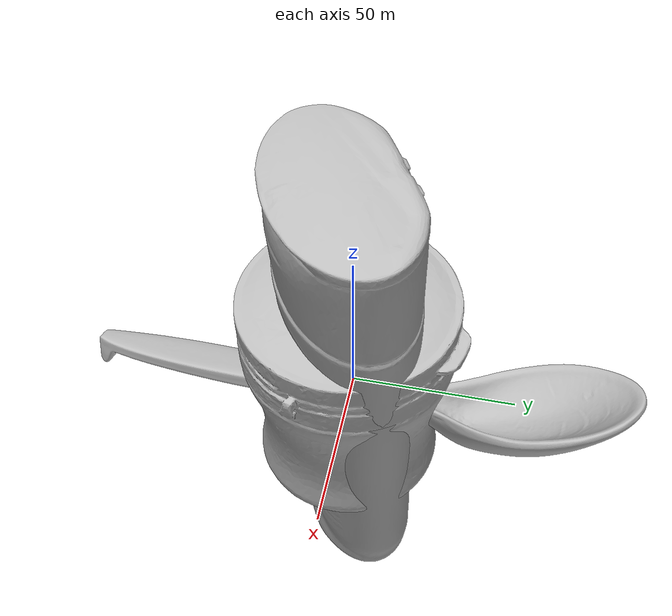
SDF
<sdf version="1.4">
 <world name="default">
  <light name="light1" type="point">
   <pose>0 0 1 0 0 0</pose>
   <diffuse>3 3 3 1</diffuse>
   <specular>3 3 3 1</specular>
  </light>
  <light name="light2" type="point">
   <pose>0 0.5 2 0 0 0</pose>
   <diffuse>1 1 1 1</diffuse>
   <specular>1 1 1 1</specular>
  </light>
  <light name="light3" type="point">
   <pose>0 0.5 2 0 0 0</pose>
   <diffuse>3 3 3 1</diffuse>
   <specular>3 3 3 1</specular>
  </light>
  <scene><ambient>0.7 0.7 0.7</ambient></scene>
  <model name="bottle1">
   <link name="link_bottle1">
    <collision name="default">
     <geometry>
      <mesh><uri>model://green_arrow/collision_meshes/collision.obj</uri><scale>1.0 1.0 1.0</scale></mesh>
     </geometry>
     <surface>
      <friction><ode><mu>0.5</mu><mu2>0.5</mu2></ode></friction>
      <contact><ode><max_vel>0</max_vel><min_depth>0.0001</min_depth><kp>1e8</kp></ode></contact>
     </surface>
    </collision>
    <visual name="default">
     <geometry>
      <mesh><uri>model://green_arrow/visual_meshes/visual.dae</uri><scale>1.0 1.0 1.0</scale></mesh>
     </geometry>
    </visual>
    <inertial>
     <mass>0.159866601228714</mass>
     <pose>0.0005358478520065546 -0.0008270691614598036 0.0022109695710241795 -0.0633227561078847 0.012984243694000861 0.6740794776591725</pose>
     <inertia>
      <ixx>0.00011596808</ixx>
      <iyy>0.00011579238</iyy>
      <izz>7.488036e-05</izz>
      <ixy>0</ixy>
      <ixz>0</ixz>
      <iyz>0</iyz>
     </inertia>
    </inertial>
   </link>
   <pose>0.025447214022278786 -0.3685067892074585 0.03896165266633034 0.04528455109567219 0.02425635071282073 -0.9602987212565485</pose>
  </model>
  <model name="bottle2">
   <link name="link_bottle2">
    <collision name="default">
     <geometry>
      <mesh><uri>model://conditioner/collision_meshes/collision.obj</uri><scale>1.0 1.0 1.0</scale></mesh>
     </geometry>
     <surface>
      <friction><ode><mu>0.5</mu><mu2>0.5</mu2></ode></friction>
      <contact><ode><max_vel>0</max_vel><min_depth>0.0001</min_depth><kp>1e8</kp></ode></contact>
     </surface>
    </collision>
    <visual name="default">
     <geometry>
      <mesh><uri>model://conditioner/visual_meshes/visual.dae</uri><scale>1.0 1.0 1.0</scale></mesh>
     </geometry>
    </visual>
    <inertial>
     <mass>0.1887805312871933</mass>
     <pose>-0.00055994390277192 -0.00017297487647738308 0.004359682556241751 -0.005038374268360293 0.015306043554332214 0.015072361860715313</pose>
     <inertia>
      <ixx>0.00041066532</ixx>
      <iyy>0.00043991112</iyy>
      <izz>6.3318876e-05</izz>
      <ixy>0</ixy>
      <ixz>0</ixz>
      <iyz>0</iyz>
     </inertia>
    </inertial>
   </link>
   <pose>0.26925647258758545 -0.19803021848201752 0.08122970908880234 0.03689241142622348 -0.01566010302511704 0.48758299609314953</pose>
  </model>
  <model name="silverware1">
   <link name="link_silverware1">
    <collision name="default">
     <geometry>
      <mesh><uri>model://doraemon_spoon/collision_meshes/collision.obj</uri><scale>1.0 1.0 1.0</scale></mesh>
     </geometry>
     <surface>
      <friction><ode><mu>0.5</mu><mu2>0.5</mu2></ode></friction>
      <contact><ode><max_vel>0</max_vel><min_depth>0.0001</min_depth><kp>1e8</kp></ode></contact>
     </surface>
    </collision>
    <visual name="default">
     <geometry>
      <mesh><uri>model://doraemon_spoon/visual_meshes/visual.dae</uri><scale>1.0 1.0 1.0</scale></mesh>
     </geometry>
    </visual>
    <inertial>
     <mass>0.029215902090072632</mass>
     <pose>-0.022165078669786453 -0.0006374581134878099 -0.003332544816657901 -0.009147069561506448 0.07380416816022378 -0.014123831282405222</pose>
     <inertia>
      <ixx>2.2884674e-06</ixx>
      <iyy>6.499588e-05</iyy>
      <izz>6.610089e-05</izz>
      <ixy>0</ixy>
      <ixz>0</ixz>
      <iyz>0</iyz>
     </inertia>
    </inertial>
   </link>
   <pose>-0.08390338718891144 0.2713562250137329 0.01473932433873415 0.2790311231227967 -0.010336580354636797 -1.6245411815085786</pose>
  </model>
  <model name="stationery1">
   <link name="link_stationery1">
    <collision name="default">
     <geometry>
      <mesh><uri>model://correction_fuid/collision_meshes/collision.obj</uri><scale>1.0 1.0 1.0</scale></mesh>
     </geometry>
     <surface>
      <friction><ode><mu>0.5</mu><mu2>0.5</mu2></ode></friction>
      <contact><ode><max_vel>0</max_vel><min_depth>0.0001</min_depth><kp>1e8</kp></ode></contact>
     </surface>
    </collision>
    <visual name="default">
     <geometry>
      <mesh><uri>model://correction_fuid/visual_meshes/visual.dae</uri><scale>1.0 1.0 1.0</scale></mesh>
     </geometry>
    </visual>
    <inertial>
     <mass>0.02664039097726345</mass>
     <pose>-0.00012557733862195164 -0.0009722907561808825 -0.001618212671019137 -0.010846611490809042 0.019488348158978066 -0.015992455472155966</pose>
     <inertia>
      <ixx>2.5801672e-05</ixx>
      <iyy>1.5615498e-06</iyy>
      <izz>2.6473212e-05</izz>
      <ixy>0</ixy>
      <ixz>0</ixz>
      <iyz>0</iyz>
     </inertia>
    </inertial>
   </link>
   <pose>-0.0008647050126455724 0.34191378951072693 0.009632829576730728 -0.0017271381897773672 -0.056168759733875334 2.604397657019509</pose>
  </model>
  <model name="bowl1">
   <link name="link_bowl1">
    <collision name="default">
     <geometry>
      <mesh><uri>model://doraemon_bowl/collision_meshes/collision.obj</uri><scale>1.0 1.0 1.0</scale></mesh>
     </geometry>
     <surface>
      <friction><ode><mu>0.5</mu><mu2>0.5</mu2></ode></friction>
      <contact><ode><max_vel>0</max_vel><min_depth>0.0001</min_depth><kp>1e8</kp></ode></contact>
     </surface>
    </collision>
    <visual name="default">
     <geometry>
      <mesh><uri>model://doraemon_bowl/visual_meshes/visual.dae</uri><scale>1.0 1.0 1.0</scale></mesh>
     </geometry>
    </visual>
    <inertial>
     <mass>0.0632677748799324</mass>
     <pose>-0.014629557728767395 0.00048571318620815873 -0.0020864882972091436 -0.005093978566849342 -0.10568406006641042 -0.026426380562233804</pose>
     <inertia>
      <ixx>8.773087e-05</ixx>
      <iyy>0.00011545301</iyy>
      <izz>0.00016985848</izz>
      <ixy>0</ixy>
      <ixz>0</ixz>
      <iyz>0</iyz>
     </inertia>
    </inertial>
   </link>
   <pose>-0.010969961993396282 0.0022694291546940804 0.025905489921569824 0.008593509755686384 0.0063435319610737695 -2.3739180427900486</pose>
  </model>
  <model name="cup1">
   <link name="link_cup1">
    <collision name="default">
     <geometry>
      <mesh><uri>model://doraemon_cup/collision_meshes/collision.obj</uri><scale>1.0 1.0 1.0</scale></mesh>
     </geometry>
     <surface>
      <friction><ode><mu>0.5</mu><mu2>0.5</mu2></ode></friction>
      <contact><ode><max_vel>0</max_vel><min_depth>0.0001</min_depth><kp>1e8</kp></ode></contact>
     </surface>
    </collision>
    <visual name="default">
     <geometry>
      <mesh><uri>model://doraemon_cup/visual_meshes/visual.dae</uri><scale>1.0 1.0 1.0</scale></mesh>
     </geometry>
    </visual>
    <inertial>
     <mass>0.04278137534856796</mass>
     <pose>-0.0003292987239547074 -0.0016633577179163694 -0.0022522551007568836 0.19498548950287564 -0.013693938110122818 -0.3205458650037051</pose>
     <inertia>
      <ixx>5.8507427e-05</ixx>
      <iyy>5.6580026e-05</iyy>
      <izz>4.623892e-05</izz>
      <ixy>0</ixy>
      <ixz>0</ixz>
      <iyz>0</iyz>
     </inertia>
    </inertial>
   </link>
   <pose>0.09746351093053818 -0.20221441984176636 0.04623017832636833 -0.012844731816091682 -0.007519258168023993 1.3980695098216553</pose>
  </model>
  <model name="plate1">
   <link name="link_plate1">
    <collision name="default">
     <geometry>
      <mesh><uri>model://hello_kitty_plate/collision_meshes/collision.obj</uri><scale>1.0 1.0 1.0</scale></mesh>
     </geometry>
     <surface>
      <friction><ode><mu>0.5</mu><mu2>0.5</mu2></ode></friction>
      <contact><ode><max_vel>0</max_vel><min_depth>0.0001</min_depth><kp>1e8</kp></ode></contact>
     </surface>
    </collision>
    <visual name="default">
     <geometry>
      <mesh><uri>model://hello_kitty_plate/visual_meshes/visual.dae</uri><scale>1.0 1.0 1.0</scale></mesh>
     </geometry>
    </visual>
    <inertial>
     <mass>0.03555070236325264</mass>
     <pose>0.0073143006302416325 0.0002893744967877865 -0.0027947186026722193 -0.00010431820965322355 -0.007054446463638022 -0.014449070801334592</pose>
     <inertia>
      <ixx>6.855243e-05</ixx>
      <iyy>0.00012937908</iyy>
      <izz>0.0001964492</izz>
      <ixy>0</ixy>
      <ixz>0</ixz>
      <iyz>0</iyz>
     </inertia>
    </inertial>
   </link>
   <pose>0.08919214457273483 0.10876844823360443 0.008342612534761429 -0.005922350773640895 7.357895458667204e-07 -0.8508722843259129</pose>
  </model>
  <model name="box4">
   <link name="link_box4">
    <collision name="default">
     <geometry>
      <mesh><uri>model://wooden_puzzle1/collision_meshes/collision.obj</uri><scale>1.0 1.0 1.0</scale></mesh>
     </geometry>
     <surface>
      <friction><ode><mu>0.5</mu><mu2>0.5</mu2></ode></friction>
      <contact><ode><max_vel>0</max_vel><min_depth>0.0001</min_depth><kp>1e8</kp></ode></contact>
     </surface>
    </collision>
    <visual name="default">
     <geometry>
      <mesh><uri>model://wooden_puzzle1/visual_meshes/visual.dae</uri><scale>1.0 1.0 1.0</scale></mesh>
     </geometry>
    </visual>
    <inertial>
     <mass>0.03278602659702301</mass>
     <pose>-0.00017350679263472557 7.972260937094688e-05 -9.191554272547364e-05 -0.07784358361794479 -0.263610796923839 -0.5528741327723476</pose>
     <inertia>
      <ixx>6.1858273e-06</ixx>
      <iyy>6.0667485e-06</iyy>
      <izz>6.139123e-06</izz>
      <ixy>0</ixy>
      <ixz>0</ixz>
      <iyz>0</iyz>
     </inertia>
    </inertial>
   </link>
   <pose>0.06748536974191666 0.1469528079032898 0.01928148791193962 0.007672457943176937 -0.0026858869483713734 2.2777140868626624</pose>
  </model>
  <physics type="ode">
   <max_contacts>50</max_contacts>
   <ode>
    <solver><type>quick</type><iters>75</iters></solver>
    <constraints>
     <contact_max_correcting_vel>0</contact_max_correcting_vel>
     <contact_surface_layer>0</contact_surface_layer>
    </constraints>
   </ode>
  </physics>
 </world>
</sdf>
